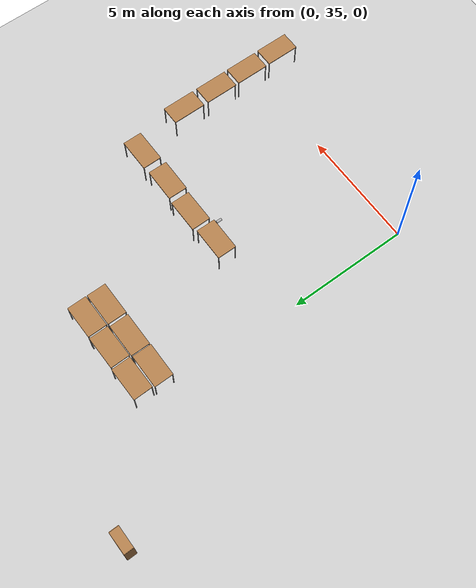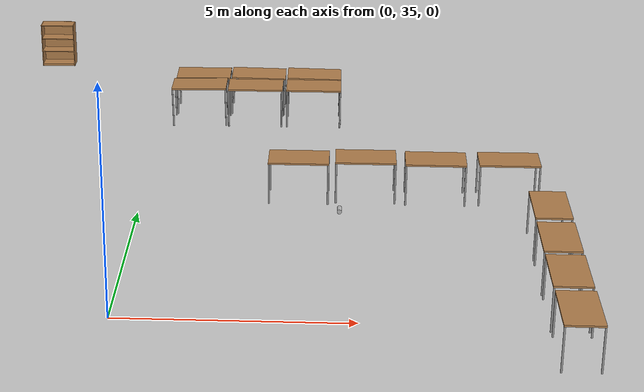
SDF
<sdf version="1.6">
 <world name="default">
  <model name="ground_plane">
   <static>1</static>
   <link name="link">
    <collision name="collision">
     <geometry><plane><normal>0 0 1</normal><size>100 100</size></plane></geometry>
     <surface><friction><ode><mu>100</mu><mu2>50</mu2></ode></friction></surface>
    </collision>
    <visual name="visual">
     <cast_shadows>0</cast_shadows>
     <geometry><plane><normal>0 0 1</normal><size>100 100</size></plane></geometry>
     <material>
      <script><uri>file://media/materials/scripts/gazebo.material</uri><name>Gazebo/Grey</name></script>
     </material>
    </visual>
   </link>
  </model>
  <model name="table">
   <static>0</static>
   <link name="link">
    <collision name="surface">
     <pose>0 0 1 0 -0 0</pose>
     <geometry><box><size>1.5 0.8 0.03</size></box></geometry>
     <surface><friction><ode><mu>0.6</mu><mu2>0.6</mu2></ode></friction></surface>
    </collision>
    <visual name="visual1">
     <pose>0 0 1 0 -0 0</pose>
     <geometry><box><size>1.4 0.8 0.04</size></box></geometry>
     <material>
      <script><uri>file://media/materials/scripts/gazebo.material</uri><name>Gazebo/Wood</name></script>
     </material>
    </visual>
    <collision name="front_left_leg">
     <pose>0.68 0.38 0.5 0 -0 0</pose>
     <geometry><cylinder><radius>0.02</radius><length>1</length></cylinder></geometry>
    </collision>
    <visual name="front_left_leg">
     <pose>0.68 0.38 0.5 0 -0 0</pose>
     <geometry><cylinder><radius>0.02</radius><length>1</length></cylinder></geometry>
     <material>
      <script><uri>file://media/materials/scripts/gazebo.material</uri><name>Gazebo/Grey</name></script>
     </material>
    </visual>
    <collision name="front_right_leg">
     <pose>0.68 -0.38 0.5 0 -0 0</pose>
     <geometry><cylinder><radius>0.02</radius><length>1</length></cylinder></geometry>
    </collision>
    <visual name="front_right_leg">
     <pose>0.68 -0.38 0.5 0 -0 0</pose>
     <geometry><cylinder><radius>0.02</radius><length>1</length></cylinder></geometry>
     <material>
      <script><uri>file://media/materials/scripts/gazebo.material</uri><name>Gazebo/Grey</name></script>
     </material>
    </visual>
    <collision name="back_right_leg">
     <pose>-0.68 -0.38 0.5 0 -0 0</pose>
     <geometry><cylinder><radius>0.02</radius><length>1</length></cylinder></geometry>
    </collision>
    <visual name="back_right_leg">
     <pose>-0.68 -0.38 0.5 0 -0 0</pose>
     <geometry><cylinder><radius>0.02</radius><length>1</length></cylinder></geometry>
     <material>
      <script><uri>file://media/materials/scripts/gazebo.material</uri><name>Gazebo/Grey</name></script>
     </material>
    </visual>
    <collision name="back_left_leg">
     <pose>-0.68 0.38 0.5 0 -0 0</pose>
     <geometry><cylinder><radius>0.02</radius><length>1</length></cylinder></geometry>
    </collision>
    <visual name="back_left_leg">
     <pose>-0.68 0.38 0.5 0 -0 0</pose>
     <geometry><cylinder><radius>0.02</radius><length>1</length></cylinder></geometry>
     <material>
      <script><uri>file://media/materials/scripts/gazebo.material</uri><name>Gazebo/Grey</name></script>
     </material>
    </visual>
    <inertial>
     <inertia><ixx>1</ixx><ixy>0</ixy><ixz>0</ixz><iyy>1</iyy><iyz>0</iyz><izz>1</izz></inertia>
     <mass>1</mass>
    </inertial>
   </link>
   <pose>3.6453 41.0475 -1e-06 0 -1e-06 -0.005766</pose>
  </model>
  <model name="table_clone">
   <static>0</static>
   <link name="link">
    <collision name="surface">
     <pose>0 0 1 0 -0 0</pose>
     <geometry><box><size>1.5 0.8 0.03</size></box></geometry>
     <surface><friction><ode><mu>0.6</mu><mu2>0.6</mu2></ode></friction></surface>
    </collision>
    <visual name="visual1">
     <pose>0 0 1 0 -0 0</pose>
     <geometry><box><size>1.4 0.8 0.04</size></box></geometry>
     <material>
      <script><uri>file://media/materials/scripts/gazebo.material</uri><name>Gazebo/Wood</name></script>
     </material>
    </visual>
    <collision name="front_left_leg">
     <pose>0.68 0.38 0.5 0 -0 0</pose>
     <geometry><cylinder><radius>0.02</radius><length>1</length></cylinder></geometry>
    </collision>
    <visual name="front_left_leg">
     <pose>0.68 0.38 0.5 0 -0 0</pose>
     <geometry><cylinder><radius>0.02</radius><length>1</length></cylinder></geometry>
     <material>
      <script><uri>file://media/materials/scripts/gazebo.material</uri><name>Gazebo/Grey</name></script>
     </material>
    </visual>
    <collision name="front_right_leg">
     <pose>0.68 -0.38 0.5 0 -0 0</pose>
     <geometry><cylinder><radius>0.02</radius><length>1</length></cylinder></geometry>
    </collision>
    <visual name="front_right_leg">
     <pose>0.68 -0.38 0.5 0 -0 0</pose>
     <geometry><cylinder><radius>0.02</radius><length>1</length></cylinder></geometry>
     <material>
      <script><uri>file://media/materials/scripts/gazebo.material</uri><name>Gazebo/Grey</name></script>
     </material>
    </visual>
    <collision name="back_right_leg">
     <pose>-0.68 -0.38 0.5 0 -0 0</pose>
     <geometry><cylinder><radius>0.02</radius><length>1</length></cylinder></geometry>
    </collision>
    <visual name="back_right_leg">
     <pose>-0.68 -0.38 0.5 0 -0 0</pose>
     <geometry><cylinder><radius>0.02</radius><length>1</length></cylinder></geometry>
     <material>
      <script><uri>file://media/materials/scripts/gazebo.material</uri><name>Gazebo/Grey</name></script>
     </material>
    </visual>
    <collision name="back_left_leg">
     <pose>-0.68 0.38 0.5 0 -0 0</pose>
     <geometry><cylinder><radius>0.02</radius><length>1</length></cylinder></geometry>
    </collision>
    <visual name="back_left_leg">
     <pose>-0.68 0.38 0.5 0 -0 0</pose>
     <geometry><cylinder><radius>0.02</radius><length>1</length></cylinder></geometry>
     <material>
      <script><uri>file://media/materials/scripts/gazebo.material</uri><name>Gazebo/Grey</name></script>
     </material>
    </visual>
    <inertial>
     <inertia><ixx>1</ixx><ixy>0</ixy><ixz>0</ixz><iyy>1</iyy><iyz>0</iyz><izz>1</izz></inertia>
     <mass>1</mass>
    </inertial>
   </link>
   <pose>5.18698 41.1386 -5e-06 0 -0 -0.000371</pose>
  </model>
  <model name="table_clone_0">
   <static>0</static>
   <link name="link">
    <collision name="surface">
     <pose>0 0 1 0 -0 0</pose>
     <geometry><box><size>1.5 0.8 0.03</size></box></geometry>
     <surface><friction><ode><mu>0.6</mu><mu2>0.6</mu2></ode></friction></surface>
    </collision>
    <visual name="visual1">
     <pose>0 0 1 0 -0 0</pose>
     <geometry><box><size>1.4 0.8 0.04</size></box></geometry>
     <material>
      <script><uri>file://media/materials/scripts/gazebo.material</uri><name>Gazebo/Wood</name></script>
     </material>
    </visual>
    <collision name="front_left_leg">
     <pose>0.68 0.38 0.5 0 -0 0</pose>
     <geometry><cylinder><radius>0.02</radius><length>1</length></cylinder></geometry>
    </collision>
    <visual name="front_left_leg">
     <pose>0.68 0.38 0.5 0 -0 0</pose>
     <geometry><cylinder><radius>0.02</radius><length>1</length></cylinder></geometry>
     <material>
      <script><uri>file://media/materials/scripts/gazebo.material</uri><name>Gazebo/Grey</name></script>
     </material>
    </visual>
    <collision name="front_right_leg">
     <pose>0.68 -0.38 0.5 0 -0 0</pose>
     <geometry><cylinder><radius>0.02</radius><length>1</length></cylinder></geometry>
    </collision>
    <visual name="front_right_leg">
     <pose>0.68 -0.38 0.5 0 -0 0</pose>
     <geometry><cylinder><radius>0.02</radius><length>1</length></cylinder></geometry>
     <material>
      <script><uri>file://media/materials/scripts/gazebo.material</uri><name>Gazebo/Grey</name></script>
     </material>
    </visual>
    <collision name="back_right_leg">
     <pose>-0.68 -0.38 0.5 0 -0 0</pose>
     <geometry><cylinder><radius>0.02</radius><length>1</length></cylinder></geometry>
    </collision>
    <visual name="back_right_leg">
     <pose>-0.68 -0.38 0.5 0 -0 0</pose>
     <geometry><cylinder><radius>0.02</radius><length>1</length></cylinder></geometry>
     <material>
      <script><uri>file://media/materials/scripts/gazebo.material</uri><name>Gazebo/Grey</name></script>
     </material>
    </visual>
    <collision name="back_left_leg">
     <pose>-0.68 0.38 0.5 0 -0 0</pose>
     <geometry><cylinder><radius>0.02</radius><length>1</length></cylinder></geometry>
    </collision>
    <visual name="back_left_leg">
     <pose>-0.68 0.38 0.5 0 -0 0</pose>
     <geometry><cylinder><radius>0.02</radius><length>1</length></cylinder></geometry>
     <material>
      <script><uri>file://media/materials/scripts/gazebo.material</uri><name>Gazebo/Grey</name></script>
     </material>
    </visual>
    <inertial>
     <inertia><ixx>1</ixx><ixy>0</ixy><ixz>0</ixz><iyy>1</iyy><iyz>0</iyz><izz>1</izz></inertia>
     <mass>1</mass>
    </inertial>
   </link>
   <pose>6.79594 41.0781 -1e-06 -3e-06 -0 -0.010716</pose>
  </model>
  <model name="table_clone_1">
   <static>0</static>
   <link name="link">
    <collision name="surface">
     <pose>0 0 1 0 -0 0</pose>
     <geometry><box><size>1.5 0.8 0.03</size></box></geometry>
     <surface><friction><ode><mu>0.6</mu><mu2>0.6</mu2></ode></friction></surface>
    </collision>
    <visual name="visual1">
     <pose>0 0 1 0 -0 0</pose>
     <geometry><box><size>1.4 0.8 0.04</size></box></geometry>
     <material>
      <script><uri>file://media/materials/scripts/gazebo.material</uri><name>Gazebo/Wood</name></script>
     </material>
    </visual>
    <collision name="front_left_leg">
     <pose>0.68 0.38 0.5 0 -0 0</pose>
     <geometry><cylinder><radius>0.02</radius><length>1</length></cylinder></geometry>
    </collision>
    <visual name="front_left_leg">
     <pose>0.68 0.38 0.5 0 -0 0</pose>
     <geometry><cylinder><radius>0.02</radius><length>1</length></cylinder></geometry>
     <material>
      <script><uri>file://media/materials/scripts/gazebo.material</uri><name>Gazebo/Grey</name></script>
     </material>
    </visual>
    <collision name="front_right_leg">
     <pose>0.68 -0.38 0.5 0 -0 0</pose>
     <geometry><cylinder><radius>0.02</radius><length>1</length></cylinder></geometry>
    </collision>
    <visual name="front_right_leg">
     <pose>0.68 -0.38 0.5 0 -0 0</pose>
     <geometry><cylinder><radius>0.02</radius><length>1</length></cylinder></geometry>
     <material>
      <script><uri>file://media/materials/scripts/gazebo.material</uri><name>Gazebo/Grey</name></script>
     </material>
    </visual>
    <collision name="back_right_leg">
     <pose>-0.68 -0.38 0.5 0 -0 0</pose>
     <geometry><cylinder><radius>0.02</radius><length>1</length></cylinder></geometry>
    </collision>
    <visual name="back_right_leg">
     <pose>-0.68 -0.38 0.5 0 -0 0</pose>
     <geometry><cylinder><radius>0.02</radius><length>1</length></cylinder></geometry>
     <material>
      <script><uri>file://media/materials/scripts/gazebo.material</uri><name>Gazebo/Grey</name></script>
     </material>
    </visual>
    <collision name="back_left_leg">
     <pose>-0.68 0.38 0.5 0 -0 0</pose>
     <geometry><cylinder><radius>0.02</radius><length>1</length></cylinder></geometry>
    </collision>
    <visual name="back_left_leg">
     <pose>-0.68 0.38 0.5 0 -0 0</pose>
     <geometry><cylinder><radius>0.02</radius><length>1</length></cylinder></geometry>
     <material>
      <script><uri>file://media/materials/scripts/gazebo.material</uri><name>Gazebo/Grey</name></script>
     </material>
    </visual>
    <inertial>
     <inertia><ixx>1</ixx><ixy>0</ixy><ixz>0</ixz><iyy>1</iyy><iyz>0</iyz><izz>1</izz></inertia>
     <mass>1</mass>
    </inertial>
   </link>
   <pose>8.47894 41.1162 -0 0 -0 0</pose>
  </model>
  <model name="beer">
   <link name="link">
    <pose>0 0 0.115 0 -0 0</pose>
    <inertial>
     <mass>0.39</mass>
     <inertia><ixx>0.00058</ixx><ixy>0</ixy><ixz>0</ixz><iyy>0.00058</iyy><iyz>0</iyz><izz>0.00019</izz></inertia>
    </inertial>
    <collision name="collision">
     <geometry><cylinder><radius>0.055</radius><length>0.23</length></cylinder></geometry>
    </collision>
    <visual name="visual">
     <geometry><cylinder><radius>0.055</radius><length>0.23</length></cylinder></geometry>
     <material>
      <script>
       <uri>model://beer/materials/scripts</uri>
       <uri>model://beer/materials/textures</uri>
       <name>Beer/Diffuse</name>
      </script>
     </material>
    </visual>
   </link>
   <pose>4.59629 40.137 0.054918 -1.57032 -0.739659 0.001286</pose>
  </model>
  <model name="bookshelf_clone_clone_3">
   <static>1</static>
   <link name="link">
    <inertial><mass>1</mass></inertial>
    <collision name="back">
     <pose>0 0.005 0.6 0 -0 0</pose>
     <geometry><box><size>0.9 0.01 1.2</size></box></geometry>
    </collision>
    <visual name="visual1">
     <pose>0 0.005 0.6 0 -0 0</pose>
     <geometry><box><size>0.9 0.01 1.2</size></box></geometry>
     <material>
      <script><uri>file://media/materials/scripts/gazebo.material</uri><name>Gazebo/Wood</name></script>
     </material>
    </visual>
    <collision name="left_side">
     <pose>0.45 -0.195 0.6 0 -0 0</pose>
     <geometry><box><size>0.02 0.4 1.2</size></box></geometry>
    </collision>
    <visual name="visual2">
     <pose>0.45 -0.195 0.6 0 -0 0</pose>
     <geometry><box><size>0.02 0.4 1.2</size></box></geometry>
     <material>
      <script><uri>file://media/materials/scripts/gazebo.material</uri><name>Gazebo/Wood</name></script>
     </material>
    </visual>
    <collision name="right_side">
     <pose>-0.45 -0.195 0.6 0 -0 0</pose>
     <geometry><box><size>0.02 0.4 1.2</size></box></geometry>
    </collision>
    <visual name="visual3">
     <pose>-0.45 -0.195 0.6 0 -0 0</pose>
     <geometry><box><size>0.02 0.4 1.2</size></box></geometry>
     <material>
      <script><uri>file://media/materials/scripts/gazebo.material</uri><name>Gazebo/Wood</name></script>
     </material>
    </visual>
    <collision name="bottom">
     <pose>0 -0.195 0.03 0 -0 0</pose>
     <geometry><box><size>0.88 0.4 0.06</size></box></geometry>
    </collision>
    <visual name="visual4">
     <pose>0 -0.195 0.03 0 -0 0</pose>
     <geometry><box><size>0.88 0.4 0.06</size></box></geometry>
     <material>
      <script><uri>file://media/materials/scripts/gazebo.material</uri><name>Gazebo/Wood</name></script>
     </material>
    </visual>
    <collision name="top">
     <pose>0 -0.195 1.19 0 -0 0</pose>
     <geometry><box><size>0.88 0.4 0.02</size></box></geometry>
    </collision>
    <visual name="visual5">
     <pose>0 -0.195 1.19 0 -0 0</pose>
     <geometry><box><size>0.88 0.4 0.02</size></box></geometry>
     <material>
      <script><uri>file://media/materials/scripts/gazebo.material</uri><name>Gazebo/Wood</name></script>
     </material>
    </visual>
    <collision name="low_shelf">
     <pose>0 -0.195 0.43 0 -0 0</pose>
     <geometry><box><size>0.88 0.4 0.02</size></box></geometry>
    </collision>
    <visual name="visual6">
     <pose>0 -0.195 0.43 0 -0 0</pose>
     <geometry><box><size>0.88 0.4 0.02</size></box></geometry>
     <material>
      <script><uri>file://media/materials/scripts/gazebo.material</uri><name>Gazebo/Wood</name></script>
     </material>
    </visual>
    <collision name="high_shelf">
     <pose>0 -0.195 0.8 0 -0 0</pose>
     <geometry><box><size>0.88 0.4 0.02</size></box></geometry>
    </collision>
    <visual name="visual7">
     <pose>0 -0.195 0.8 0 -0 0</pose>
     <geometry><box><size>0.88 0.4 0.02</size></box></geometry>
     <material>
      <script><uri>file://media/materials/scripts/gazebo.material</uri><name>Gazebo/Wood</name></script>
     </material>
    </visual>
   </link>
   <pose>-3.45242 50.2827 0 0 -0 0</pose>
  </model>
  <model name="table_clone_1_clone">
   <static>0</static>
   <link name="link">
    <collision name="surface">
     <pose>0 0 1 0 -0 0</pose>
     <geometry><box><size>1.5 0.8 0.03</size></box></geometry>
     <surface><friction><ode><mu>0.6</mu><mu2>0.6</mu2></ode></friction></surface>
    </collision>
    <visual name="visual1">
     <pose>0 0 1 0 -0 0</pose>
     <geometry><box><size>1.4 0.8 0.04</size></box></geometry>
     <material>
      <script><uri>file://media/materials/scripts/gazebo.material</uri><name>Gazebo/Wood</name></script>
     </material>
    </visual>
    <collision name="front_left_leg">
     <pose>0.68 0.38 0.5 0 -0 0</pose>
     <geometry><cylinder><radius>0.02</radius><length>1</length></cylinder></geometry>
    </collision>
    <visual name="front_left_leg">
     <pose>0.68 0.38 0.5 0 -0 0</pose>
     <geometry><cylinder><radius>0.02</radius><length>1</length></cylinder></geometry>
     <material>
      <script><uri>file://media/materials/scripts/gazebo.material</uri><name>Gazebo/Grey</name></script>
     </material>
    </visual>
    <collision name="front_right_leg">
     <pose>0.68 -0.38 0.5 0 -0 0</pose>
     <geometry><cylinder><radius>0.02</radius><length>1</length></cylinder></geometry>
    </collision>
    <visual name="front_right_leg">
     <pose>0.68 -0.38 0.5 0 -0 0</pose>
     <geometry><cylinder><radius>0.02</radius><length>1</length></cylinder></geometry>
     <material>
      <script><uri>file://media/materials/scripts/gazebo.material</uri><name>Gazebo/Grey</name></script>
     </material>
    </visual>
    <collision name="back_right_leg">
     <pose>-0.68 -0.38 0.5 0 -0 0</pose>
     <geometry><cylinder><radius>0.02</radius><length>1</length></cylinder></geometry>
    </collision>
    <visual name="back_right_leg">
     <pose>-0.68 -0.38 0.5 0 -0 0</pose>
     <geometry><cylinder><radius>0.02</radius><length>1</length></cylinder></geometry>
     <material>
      <script><uri>file://media/materials/scripts/gazebo.material</uri><name>Gazebo/Grey</name></script>
     </material>
    </visual>
    <collision name="back_left_leg">
     <pose>-0.68 0.38 0.5 0 -0 0</pose>
     <geometry><cylinder><radius>0.02</radius><length>1</length></cylinder></geometry>
    </collision>
    <visual name="back_left_leg">
     <pose>-0.68 0.38 0.5 0 -0 0</pose>
     <geometry><cylinder><radius>0.02</radius><length>1</length></cylinder></geometry>
     <material>
      <script><uri>file://media/materials/scripts/gazebo.material</uri><name>Gazebo/Grey</name></script>
     </material>
    </visual>
    <inertial>
     <inertia><ixx>1</ixx><ixy>0</ixy><ixz>0</ixz><iyy>1</iyy><iyz>0</iyz><izz>1</izz></inertia>
     <mass>1</mass>
    </inertial>
   </link>
   <pose>9.14413 38.6326 -0 0 -0 1.57</pose>
  </model>
  <model name="table_clone_1_clone_clone">
   <static>0</static>
   <link name="link">
    <collision name="surface">
     <pose>0 0 1 0 -0 0</pose>
     <geometry><box><size>1.5 0.8 0.03</size></box></geometry>
     <surface><friction><ode><mu>0.6</mu><mu2>0.6</mu2></ode></friction></surface>
    </collision>
    <visual name="visual1">
     <pose>0 0 1 0 -0 0</pose>
     <geometry><box><size>1.4 0.8 0.04</size></box></geometry>
     <material>
      <script><uri>file://media/materials/scripts/gazebo.material</uri><name>Gazebo/Wood</name></script>
     </material>
    </visual>
    <collision name="front_left_leg">
     <pose>0.68 0.38 0.5 0 -0 0</pose>
     <geometry><cylinder><radius>0.02</radius><length>1</length></cylinder></geometry>
    </collision>
    <visual name="front_left_leg">
     <pose>0.68 0.38 0.5 0 -0 0</pose>
     <geometry><cylinder><radius>0.02</radius><length>1</length></cylinder></geometry>
     <material>
      <script><uri>file://media/materials/scripts/gazebo.material</uri><name>Gazebo/Grey</name></script>
     </material>
    </visual>
    <collision name="front_right_leg">
     <pose>0.68 -0.38 0.5 0 -0 0</pose>
     <geometry><cylinder><radius>0.02</radius><length>1</length></cylinder></geometry>
    </collision>
    <visual name="front_right_leg">
     <pose>0.68 -0.38 0.5 0 -0 0</pose>
     <geometry><cylinder><radius>0.02</radius><length>1</length></cylinder></geometry>
     <material>
      <script><uri>file://media/materials/scripts/gazebo.material</uri><name>Gazebo/Grey</name></script>
     </material>
    </visual>
    <collision name="back_right_leg">
     <pose>-0.68 -0.38 0.5 0 -0 0</pose>
     <geometry><cylinder><radius>0.02</radius><length>1</length></cylinder></geometry>
    </collision>
    <visual name="back_right_leg">
     <pose>-0.68 -0.38 0.5 0 -0 0</pose>
     <geometry><cylinder><radius>0.02</radius><length>1</length></cylinder></geometry>
     <material>
      <script><uri>file://media/materials/scripts/gazebo.material</uri><name>Gazebo/Grey</name></script>
     </material>
    </visual>
    <collision name="back_left_leg">
     <pose>-0.68 0.38 0.5 0 -0 0</pose>
     <geometry><cylinder><radius>0.02</radius><length>1</length></cylinder></geometry>
    </collision>
    <visual name="back_left_leg">
     <pose>-0.68 0.38 0.5 0 -0 0</pose>
     <geometry><cylinder><radius>0.02</radius><length>1</length></cylinder></geometry>
     <material>
      <script><uri>file://media/materials/scripts/gazebo.material</uri><name>Gazebo/Grey</name></script>
     </material>
    </visual>
    <inertial>
     <inertia><ixx>1</ixx><ixy>0</ixy><ixz>0</ixz><iyy>1</iyy><iyz>0</iyz><izz>1</izz></inertia>
     <mass>1</mass>
    </inertial>
   </link>
   <pose>9.14383 37.0419 -0 0 -0 1.57</pose>
  </model>
  <model name="table_clone_1_clone_clone_0">
   <static>0</static>
   <link name="link">
    <collision name="surface">
     <pose>0 0 1 0 -0 0</pose>
     <geometry><box><size>1.5 0.8 0.03</size></box></geometry>
     <surface><friction><ode><mu>0.6</mu><mu2>0.6</mu2></ode></friction></surface>
    </collision>
    <visual name="visual1">
     <pose>0 0 1 0 -0 0</pose>
     <geometry><box><size>1.4 0.8 0.04</size></box></geometry>
     <material>
      <script><uri>file://media/materials/scripts/gazebo.material</uri><name>Gazebo/Wood</name></script>
     </material>
    </visual>
    <collision name="front_left_leg">
     <pose>0.68 0.38 0.5 0 -0 0</pose>
     <geometry><cylinder><radius>0.02</radius><length>1</length></cylinder></geometry>
    </collision>
    <visual name="front_left_leg">
     <pose>0.68 0.38 0.5 0 -0 0</pose>
     <geometry><cylinder><radius>0.02</radius><length>1</length></cylinder></geometry>
     <material>
      <script><uri>file://media/materials/scripts/gazebo.material</uri><name>Gazebo/Grey</name></script>
     </material>
    </visual>
    <collision name="front_right_leg">
     <pose>0.68 -0.38 0.5 0 -0 0</pose>
     <geometry><cylinder><radius>0.02</radius><length>1</length></cylinder></geometry>
    </collision>
    <visual name="front_right_leg">
     <pose>0.68 -0.38 0.5 0 -0 0</pose>
     <geometry><cylinder><radius>0.02</radius><length>1</length></cylinder></geometry>
     <material>
      <script><uri>file://media/materials/scripts/gazebo.material</uri><name>Gazebo/Grey</name></script>
     </material>
    </visual>
    <collision name="back_right_leg">
     <pose>-0.68 -0.38 0.5 0 -0 0</pose>
     <geometry><cylinder><radius>0.02</radius><length>1</length></cylinder></geometry>
    </collision>
    <visual name="back_right_leg">
     <pose>-0.68 -0.38 0.5 0 -0 0</pose>
     <geometry><cylinder><radius>0.02</radius><length>1</length></cylinder></geometry>
     <material>
      <script><uri>file://media/materials/scripts/gazebo.material</uri><name>Gazebo/Grey</name></script>
     </material>
    </visual>
    <collision name="back_left_leg">
     <pose>-0.68 0.38 0.5 0 -0 0</pose>
     <geometry><cylinder><radius>0.02</radius><length>1</length></cylinder></geometry>
    </collision>
    <visual name="back_left_leg">
     <pose>-0.68 0.38 0.5 0 -0 0</pose>
     <geometry><cylinder><radius>0.02</radius><length>1</length></cylinder></geometry>
     <material>
      <script><uri>file://media/materials/scripts/gazebo.material</uri><name>Gazebo/Grey</name></script>
     </material>
    </visual>
    <inertial>
     <inertia><ixx>1</ixx><ixy>0</ixy><ixz>0</ixz><iyy>1</iyy><iyz>0</iyz><izz>1</izz></inertia>
     <mass>1</mass>
    </inertial>
   </link>
   <pose>9.15024 35.4988 -0 0 -0 1.57</pose>
  </model>
  <model name="table_clone_1_clone_clone_1">
   <static>0</static>
   <link name="link">
    <collision name="surface">
     <pose>0 0 1 0 -0 0</pose>
     <geometry><box><size>1.5 0.8 0.03</size></box></geometry>
     <surface><friction><ode><mu>0.6</mu><mu2>0.6</mu2></ode></friction></surface>
    </collision>
    <visual name="visual1">
     <pose>0 0 1 0 -0 0</pose>
     <geometry><box><size>1.4 0.8 0.04</size></box></geometry>
     <material>
      <script><uri>file://media/materials/scripts/gazebo.material</uri><name>Gazebo/Wood</name></script>
     </material>
    </visual>
    <collision name="front_left_leg">
     <pose>0.68 0.38 0.5 0 -0 0</pose>
     <geometry><cylinder><radius>0.02</radius><length>1</length></cylinder></geometry>
    </collision>
    <visual name="front_left_leg">
     <pose>0.68 0.38 0.5 0 -0 0</pose>
     <geometry><cylinder><radius>0.02</radius><length>1</length></cylinder></geometry>
     <material>
      <script><uri>file://media/materials/scripts/gazebo.material</uri><name>Gazebo/Grey</name></script>
     </material>
    </visual>
    <collision name="front_right_leg">
     <pose>0.68 -0.38 0.5 0 -0 0</pose>
     <geometry><cylinder><radius>0.02</radius><length>1</length></cylinder></geometry>
    </collision>
    <visual name="front_right_leg">
     <pose>0.68 -0.38 0.5 0 -0 0</pose>
     <geometry><cylinder><radius>0.02</radius><length>1</length></cylinder></geometry>
     <material>
      <script><uri>file://media/materials/scripts/gazebo.material</uri><name>Gazebo/Grey</name></script>
     </material>
    </visual>
    <collision name="back_right_leg">
     <pose>-0.68 -0.38 0.5 0 -0 0</pose>
     <geometry><cylinder><radius>0.02</radius><length>1</length></cylinder></geometry>
    </collision>
    <visual name="back_right_leg">
     <pose>-0.68 -0.38 0.5 0 -0 0</pose>
     <geometry><cylinder><radius>0.02</radius><length>1</length></cylinder></geometry>
     <material>
      <script><uri>file://media/materials/scripts/gazebo.material</uri><name>Gazebo/Grey</name></script>
     </material>
    </visual>
    <collision name="back_left_leg">
     <pose>-0.68 0.38 0.5 0 -0 0</pose>
     <geometry><cylinder><radius>0.02</radius><length>1</length></cylinder></geometry>
    </collision>
    <visual name="back_left_leg">
     <pose>-0.68 0.38 0.5 0 -0 0</pose>
     <geometry><cylinder><radius>0.02</radius><length>1</length></cylinder></geometry>
     <material>
      <script><uri>file://media/materials/scripts/gazebo.material</uri><name>Gazebo/Grey</name></script>
     </material>
    </visual>
    <inertial>
     <inertia><ixx>1</ixx><ixy>0</ixy><ixz>0</ixz><iyy>1</iyy><iyz>0</iyz><izz>1</izz></inertia>
     <mass>1</mass>
    </inertial>
   </link>
   <pose>9.16175 33.9372 -2e-06 2e-06 -0 1.57</pose>
  </model>
  <model name="table_2">
   <static>0</static>
   <link name="link">
    <collision name="surface">
     <pose>0 0 1 0 -0 0</pose>
     <geometry><box><size>1.5 0.8 0.03</size></box></geometry>
     <surface><friction><ode><mu>0.6</mu><mu2>0.6</mu2></ode></friction></surface>
    </collision>
    <visual name="visual1">
     <pose>0 0 1 0 -0 0</pose>
     <geometry><box><size>1.4 0.8 0.04</size></box></geometry>
     <material>
      <script><uri>file://media/materials/scripts/gazebo.material</uri><name>Gazebo/Wood</name></script>
     </material>
    </visual>
    <collision name="front_left_leg">
     <pose>0.68 0.38 0.5 0 -0 0</pose>
     <geometry><cylinder><radius>0.02</radius><length>1</length></cylinder></geometry>
    </collision>
    <visual name="front_left_leg">
     <pose>0.68 0.38 0.5 0 -0 0</pose>
     <geometry><cylinder><radius>0.02</radius><length>1</length></cylinder></geometry>
     <material>
      <script><uri>file://media/materials/scripts/gazebo.material</uri><name>Gazebo/Grey</name></script>
     </material>
    </visual>
    <collision name="front_right_leg">
     <pose>0.68 -0.38 0.5 0 -0 0</pose>
     <geometry><cylinder><radius>0.02</radius><length>1</length></cylinder></geometry>
    </collision>
    <visual name="front_right_leg">
     <pose>0.68 -0.38 0.5 0 -0 0</pose>
     <geometry><cylinder><radius>0.02</radius><length>1</length></cylinder></geometry>
     <material>
      <script><uri>file://media/materials/scripts/gazebo.material</uri><name>Gazebo/Grey</name></script>
     </material>
    </visual>
    <collision name="back_right_leg">
     <pose>-0.68 -0.38 0.5 0 -0 0</pose>
     <geometry><cylinder><radius>0.02</radius><length>1</length></cylinder></geometry>
    </collision>
    <visual name="back_right_leg">
     <pose>-0.68 -0.38 0.5 0 -0 0</pose>
     <geometry><cylinder><radius>0.02</radius><length>1</length></cylinder></geometry>
     <material>
      <script><uri>file://media/materials/scripts/gazebo.material</uri><name>Gazebo/Grey</name></script>
     </material>
    </visual>
    <collision name="back_left_leg">
     <pose>-0.68 0.38 0.5 0 -0 0</pose>
     <geometry><cylinder><radius>0.02</radius><length>1</length></cylinder></geometry>
    </collision>
    <visual name="back_left_leg">
     <pose>-0.68 0.38 0.5 0 -0 0</pose>
     <geometry><cylinder><radius>0.02</radius><length>1</length></cylinder></geometry>
     <material>
      <script><uri>file://media/materials/scripts/gazebo.material</uri><name>Gazebo/Grey</name></script>
     </material>
    </visual>
    <inertial>
     <inertia><ixx>1</ixx><ixy>0</ixy><ixz>0</ixz><iyy>1</iyy><iyz>0</iyz><izz>1</izz></inertia>
     <mass>1</mass>
    </inertial>
   </link>
   <pose>0.997528 46.6705 0 0 -0 0.010689</pose>
  </model>
  <model name="table_3">
   <static>0</static>
   <link name="link">
    <collision name="surface">
     <pose>0 0 1 0 -0 0</pose>
     <geometry><box><size>1.5 0.8 0.03</size></box></geometry>
     <surface><friction><ode><mu>0.6</mu><mu2>0.6</mu2></ode></friction></surface>
    </collision>
    <visual name="visual1">
     <pose>0 0 1 0 -0 0</pose>
     <geometry><box><size>1.4 0.8 0.04</size></box></geometry>
     <material>
      <script><uri>file://media/materials/scripts/gazebo.material</uri><name>Gazebo/Wood</name></script>
     </material>
    </visual>
    <collision name="front_left_leg">
     <pose>0.68 0.38 0.5 0 -0 0</pose>
     <geometry><cylinder><radius>0.02</radius><length>1</length></cylinder></geometry>
    </collision>
    <visual name="front_left_leg">
     <pose>0.68 0.38 0.5 0 -0 0</pose>
     <geometry><cylinder><radius>0.02</radius><length>1</length></cylinder></geometry>
     <material>
      <script><uri>file://media/materials/scripts/gazebo.material</uri><name>Gazebo/Grey</name></script>
     </material>
    </visual>
    <collision name="front_right_leg">
     <pose>0.68 -0.38 0.5 0 -0 0</pose>
     <geometry><cylinder><radius>0.02</radius><length>1</length></cylinder></geometry>
    </collision>
    <visual name="front_right_leg">
     <pose>0.68 -0.38 0.5 0 -0 0</pose>
     <geometry><cylinder><radius>0.02</radius><length>1</length></cylinder></geometry>
     <material>
      <script><uri>file://media/materials/scripts/gazebo.material</uri><name>Gazebo/Grey</name></script>
     </material>
    </visual>
    <collision name="back_right_leg">
     <pose>-0.68 -0.38 0.5 0 -0 0</pose>
     <geometry><cylinder><radius>0.02</radius><length>1</length></cylinder></geometry>
    </collision>
    <visual name="back_right_leg">
     <pose>-0.68 -0.38 0.5 0 -0 0</pose>
     <geometry><cylinder><radius>0.02</radius><length>1</length></cylinder></geometry>
     <material>
      <script><uri>file://media/materials/scripts/gazebo.material</uri><name>Gazebo/Grey</name></script>
     </material>
    </visual>
    <collision name="back_left_leg">
     <pose>-0.68 0.38 0.5 0 -0 0</pose>
     <geometry><cylinder><radius>0.02</radius><length>1</length></cylinder></geometry>
    </collision>
    <visual name="back_left_leg">
     <pose>-0.68 0.38 0.5 0 -0 0</pose>
     <geometry><cylinder><radius>0.02</radius><length>1</length></cylinder></geometry>
     <material>
      <script><uri>file://media/materials/scripts/gazebo.material</uri><name>Gazebo/Grey</name></script>
     </material>
    </visual>
    <inertial>
     <inertia><ixx>1</ixx><ixy>0</ixy><ixz>0</ixz><iyy>1</iyy><iyz>0</iyz><izz>1</izz></inertia>
     <mass>1</mass>
    </inertial>
   </link>
   <pose>2.42685 46.6635 0.015098 3e-06 0.021583 0.010534</pose>
  </model>
  <model name="table_4">
   <static>0</static>
   <link name="link">
    <collision name="surface">
     <pose>0 0 1 0 -0 0</pose>
     <geometry><box><size>1.5 0.8 0.03</size></box></geometry>
     <surface><friction><ode><mu>0.6</mu><mu2>0.6</mu2></ode></friction></surface>
    </collision>
    <visual name="visual1">
     <pose>0 0 1 0 -0 0</pose>
     <geometry><box><size>1.4 0.8 0.04</size></box></geometry>
     <material>
      <script><uri>file://media/materials/scripts/gazebo.material</uri><name>Gazebo/Wood</name></script>
     </material>
    </visual>
    <collision name="front_left_leg">
     <pose>0.68 0.38 0.5 0 -0 0</pose>
     <geometry><cylinder><radius>0.02</radius><length>1</length></cylinder></geometry>
    </collision>
    <visual name="front_left_leg">
     <pose>0.68 0.38 0.5 0 -0 0</pose>
     <geometry><cylinder><radius>0.02</radius><length>1</length></cylinder></geometry>
     <material>
      <script><uri>file://media/materials/scripts/gazebo.material</uri><name>Gazebo/Grey</name></script>
     </material>
    </visual>
    <collision name="front_right_leg">
     <pose>0.68 -0.38 0.5 0 -0 0</pose>
     <geometry><cylinder><radius>0.02</radius><length>1</length></cylinder></geometry>
    </collision>
    <visual name="front_right_leg">
     <pose>0.68 -0.38 0.5 0 -0 0</pose>
     <geometry><cylinder><radius>0.02</radius><length>1</length></cylinder></geometry>
     <material>
      <script><uri>file://media/materials/scripts/gazebo.material</uri><name>Gazebo/Grey</name></script>
     </material>
    </visual>
    <collision name="back_right_leg">
     <pose>-0.68 -0.38 0.5 0 -0 0</pose>
     <geometry><cylinder><radius>0.02</radius><length>1</length></cylinder></geometry>
    </collision>
    <visual name="back_right_leg">
     <pose>-0.68 -0.38 0.5 0 -0 0</pose>
     <geometry><cylinder><radius>0.02</radius><length>1</length></cylinder></geometry>
     <material>
      <script><uri>file://media/materials/scripts/gazebo.material</uri><name>Gazebo/Grey</name></script>
     </material>
    </visual>
    <collision name="back_left_leg">
     <pose>-0.68 0.38 0.5 0 -0 0</pose>
     <geometry><cylinder><radius>0.02</radius><length>1</length></cylinder></geometry>
    </collision>
    <visual name="back_left_leg">
     <pose>-0.68 0.38 0.5 0 -0 0</pose>
     <geometry><cylinder><radius>0.02</radius><length>1</length></cylinder></geometry>
     <material>
      <script><uri>file://media/materials/scripts/gazebo.material</uri><name>Gazebo/Grey</name></script>
     </material>
    </visual>
    <inertial>
     <inertia><ixx>1</ixx><ixy>0</ixy><ixz>0</ixz><iyy>1</iyy><iyz>0</iyz><izz>1</izz></inertia>
     <mass>1</mass>
    </inertial>
   </link>
   <pose>3.88059 46.6685 0.014465 -5.9e-05 0.020648 0.003994</pose>
  </model>
  <model name="table_7">
   <static>0</static>
   <link name="link">
    <collision name="surface">
     <pose>0 0 1 0 -0 0</pose>
     <geometry><box><size>1.5 0.8 0.03</size></box></geometry>
     <surface><friction><ode><mu>0.6</mu><mu2>0.6</mu2></ode></friction></surface>
    </collision>
    <visual name="visual1">
     <pose>0 0 1 0 -0 0</pose>
     <geometry><box><size>1.4 0.8 0.04</size></box></geometry>
     <material>
      <script><uri>file://media/materials/scripts/gazebo.material</uri><name>Gazebo/Wood</name></script>
     </material>
    </visual>
    <collision name="front_left_leg">
     <pose>0.68 0.38 0.5 0 -0 0</pose>
     <geometry><cylinder><radius>0.02</radius><length>1</length></cylinder></geometry>
    </collision>
    <visual name="front_left_leg">
     <pose>0.68 0.38 0.5 0 -0 0</pose>
     <geometry><cylinder><radius>0.02</radius><length>1</length></cylinder></geometry>
     <material>
      <script><uri>file://media/materials/scripts/gazebo.material</uri><name>Gazebo/Grey</name></script>
     </material>
    </visual>
    <collision name="front_right_leg">
     <pose>0.68 -0.38 0.5 0 -0 0</pose>
     <geometry><cylinder><radius>0.02</radius><length>1</length></cylinder></geometry>
    </collision>
    <visual name="front_right_leg">
     <pose>0.68 -0.38 0.5 0 -0 0</pose>
     <geometry><cylinder><radius>0.02</radius><length>1</length></cylinder></geometry>
     <material>
      <script><uri>file://media/materials/scripts/gazebo.material</uri><name>Gazebo/Grey</name></script>
     </material>
    </visual>
    <collision name="back_right_leg">
     <pose>-0.68 -0.38 0.5 0 -0 0</pose>
     <geometry><cylinder><radius>0.02</radius><length>1</length></cylinder></geometry>
    </collision>
    <visual name="back_right_leg">
     <pose>-0.68 -0.38 0.5 0 -0 0</pose>
     <geometry><cylinder><radius>0.02</radius><length>1</length></cylinder></geometry>
     <material>
      <script><uri>file://media/materials/scripts/gazebo.material</uri><name>Gazebo/Grey</name></script>
     </material>
    </visual>
    <collision name="back_left_leg">
     <pose>-0.68 0.38 0.5 0 -0 0</pose>
     <geometry><cylinder><radius>0.02</radius><length>1</length></cylinder></geometry>
    </collision>
    <visual name="back_left_leg">
     <pose>-0.68 0.38 0.5 0 -0 0</pose>
     <geometry><cylinder><radius>0.02</radius><length>1</length></cylinder></geometry>
     <material>
      <script><uri>file://media/materials/scripts/gazebo.material</uri><name>Gazebo/Grey</name></script>
     </material>
    </visual>
    <inertial>
     <inertia><ixx>1</ixx><ixy>0</ixy><ixz>0</ixz><iyy>1</iyy><iyz>0</iyz><izz>1</izz></inertia>
     <mass>1</mass>
    </inertial>
   </link>
   <pose>0.970584 45.8067 0.015104 2e-06 -0.021589 0.000568</pose>
  </model>
  <model name="table_8">
   <static>0</static>
   <link name="link">
    <collision name="surface">
     <pose>0 0 1 0 -0 0</pose>
     <geometry><box><size>1.5 0.8 0.03</size></box></geometry>
     <surface><friction><ode><mu>0.6</mu><mu2>0.6</mu2></ode></friction></surface>
    </collision>
    <visual name="visual1">
     <pose>0 0 1 0 -0 0</pose>
     <geometry><box><size>1.4 0.8 0.04</size></box></geometry>
     <material>
      <script><uri>file://media/materials/scripts/gazebo.material</uri><name>Gazebo/Wood</name></script>
     </material>
    </visual>
    <collision name="front_left_leg">
     <pose>0.68 0.38 0.5 0 -0 0</pose>
     <geometry><cylinder><radius>0.02</radius><length>1</length></cylinder></geometry>
    </collision>
    <visual name="front_left_leg">
     <pose>0.68 0.38 0.5 0 -0 0</pose>
     <geometry><cylinder><radius>0.02</radius><length>1</length></cylinder></geometry>
     <material>
      <script><uri>file://media/materials/scripts/gazebo.material</uri><name>Gazebo/Grey</name></script>
     </material>
    </visual>
    <collision name="front_right_leg">
     <pose>0.68 -0.38 0.5 0 -0 0</pose>
     <geometry><cylinder><radius>0.02</radius><length>1</length></cylinder></geometry>
    </collision>
    <visual name="front_right_leg">
     <pose>0.68 -0.38 0.5 0 -0 0</pose>
     <geometry><cylinder><radius>0.02</radius><length>1</length></cylinder></geometry>
     <material>
      <script><uri>file://media/materials/scripts/gazebo.material</uri><name>Gazebo/Grey</name></script>
     </material>
    </visual>
    <collision name="back_right_leg">
     <pose>-0.68 -0.38 0.5 0 -0 0</pose>
     <geometry><cylinder><radius>0.02</radius><length>1</length></cylinder></geometry>
    </collision>
    <visual name="back_right_leg">
     <pose>-0.68 -0.38 0.5 0 -0 0</pose>
     <geometry><cylinder><radius>0.02</radius><length>1</length></cylinder></geometry>
     <material>
      <script><uri>file://media/materials/scripts/gazebo.material</uri><name>Gazebo/Grey</name></script>
     </material>
    </visual>
    <collision name="back_left_leg">
     <pose>-0.68 0.38 0.5 0 -0 0</pose>
     <geometry><cylinder><radius>0.02</radius><length>1</length></cylinder></geometry>
    </collision>
    <visual name="back_left_leg">
     <pose>-0.68 0.38 0.5 0 -0 0</pose>
     <geometry><cylinder><radius>0.02</radius><length>1</length></cylinder></geometry>
     <material>
      <script><uri>file://media/materials/scripts/gazebo.material</uri><name>Gazebo/Grey</name></script>
     </material>
    </visual>
    <inertial>
     <inertia><ixx>1</ixx><ixy>0</ixy><ixz>0</ixz><iyy>1</iyy><iyz>0</iyz><izz>1</izz></inertia>
     <mass>1</mass>
    </inertial>
   </link>
   <pose>2.3998 45.8199 -0.000529 -1e-06 0 0.000569</pose>
  </model>
  <model name="table_9">
   <static>0</static>
   <link name="link">
    <collision name="surface">
     <pose>0 0 1 0 -0 0</pose>
     <geometry><box><size>1.5 0.8 0.03</size></box></geometry>
     <surface><friction><ode><mu>0.6</mu><mu2>0.6</mu2></ode></friction></surface>
    </collision>
    <visual name="visual1">
     <pose>0 0 1 0 -0 0</pose>
     <geometry><box><size>1.4 0.8 0.04</size></box></geometry>
     <material>
      <script><uri>file://media/materials/scripts/gazebo.material</uri><name>Gazebo/Wood</name></script>
     </material>
    </visual>
    <collision name="front_left_leg">
     <pose>0.68 0.38 0.5 0 -0 0</pose>
     <geometry><cylinder><radius>0.02</radius><length>1</length></cylinder></geometry>
    </collision>
    <visual name="front_left_leg">
     <pose>0.68 0.38 0.5 0 -0 0</pose>
     <geometry><cylinder><radius>0.02</radius><length>1</length></cylinder></geometry>
     <material>
      <script><uri>file://media/materials/scripts/gazebo.material</uri><name>Gazebo/Grey</name></script>
     </material>
    </visual>
    <collision name="front_right_leg">
     <pose>0.68 -0.38 0.5 0 -0 0</pose>
     <geometry><cylinder><radius>0.02</radius><length>1</length></cylinder></geometry>
    </collision>
    <visual name="front_right_leg">
     <pose>0.68 -0.38 0.5 0 -0 0</pose>
     <geometry><cylinder><radius>0.02</radius><length>1</length></cylinder></geometry>
     <material>
      <script><uri>file://media/materials/scripts/gazebo.material</uri><name>Gazebo/Grey</name></script>
     </material>
    </visual>
    <collision name="back_right_leg">
     <pose>-0.68 -0.38 0.5 0 -0 0</pose>
     <geometry><cylinder><radius>0.02</radius><length>1</length></cylinder></geometry>
    </collision>
    <visual name="back_right_leg">
     <pose>-0.68 -0.38 0.5 0 -0 0</pose>
     <geometry><cylinder><radius>0.02</radius><length>1</length></cylinder></geometry>
     <material>
      <script><uri>file://media/materials/scripts/gazebo.material</uri><name>Gazebo/Grey</name></script>
     </material>
    </visual>
    <collision name="back_left_leg">
     <pose>-0.68 0.38 0.5 0 -0 0</pose>
     <geometry><cylinder><radius>0.02</radius><length>1</length></cylinder></geometry>
    </collision>
    <visual name="back_left_leg">
     <pose>-0.68 0.38 0.5 0 -0 0</pose>
     <geometry><cylinder><radius>0.02</radius><length>1</length></cylinder></geometry>
     <material>
      <script><uri>file://media/materials/scripts/gazebo.material</uri><name>Gazebo/Grey</name></script>
     </material>
    </visual>
    <inertial>
     <inertia><ixx>1</ixx><ixy>0</ixy><ixz>0</ixz><iyy>1</iyy><iyz>0</iyz><izz>1</izz></inertia>
     <mass>1</mass>
    </inertial>
   </link>
   <pose>3.8998 45.8207 -4e-06 1e-06 -1e-06 0.000569</pose>
  </model>
 </world>
</sdf>
